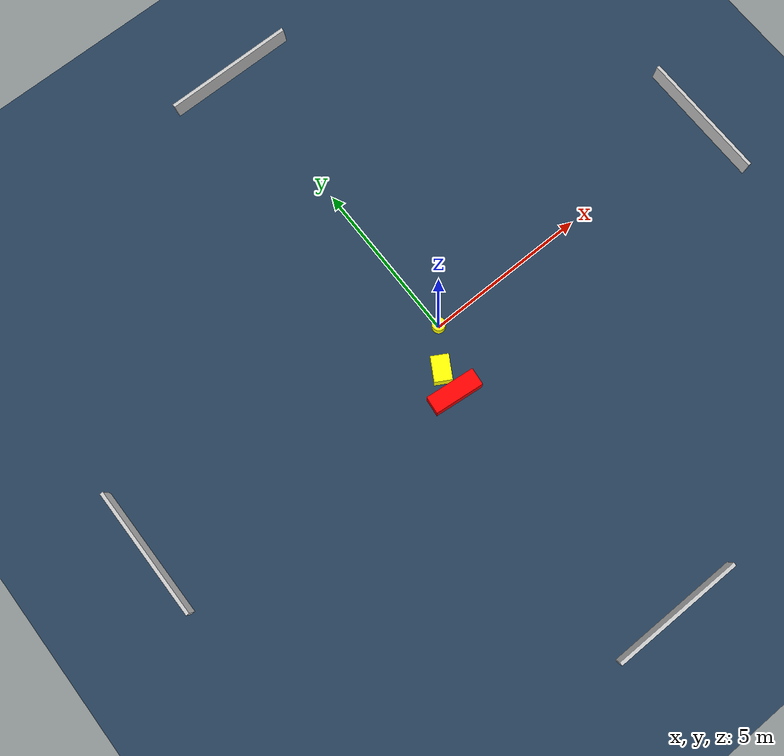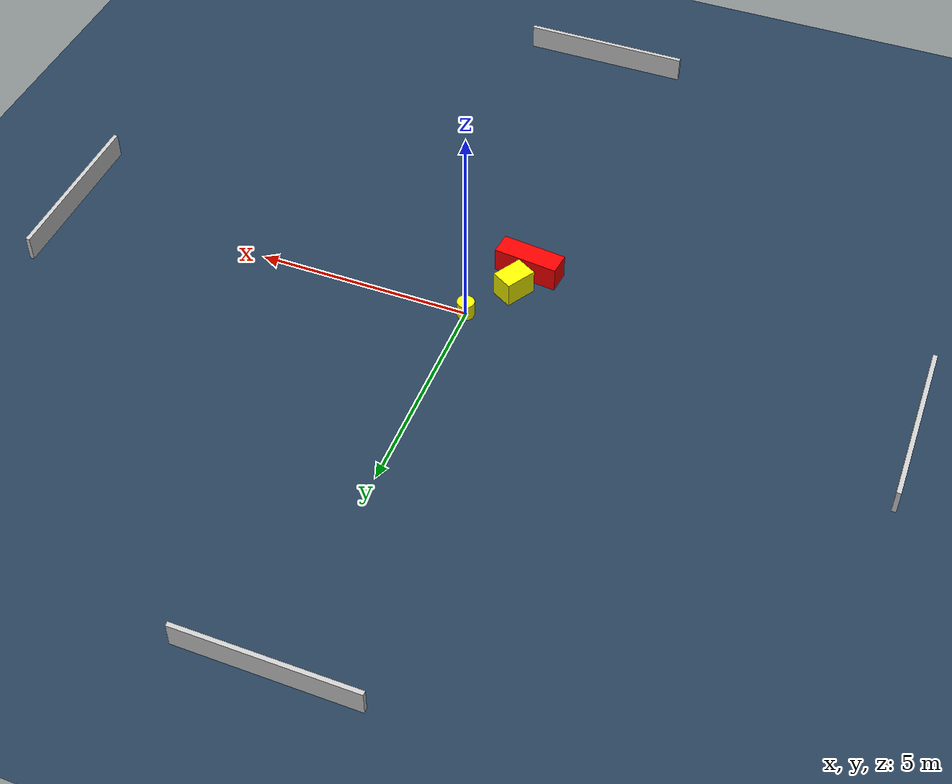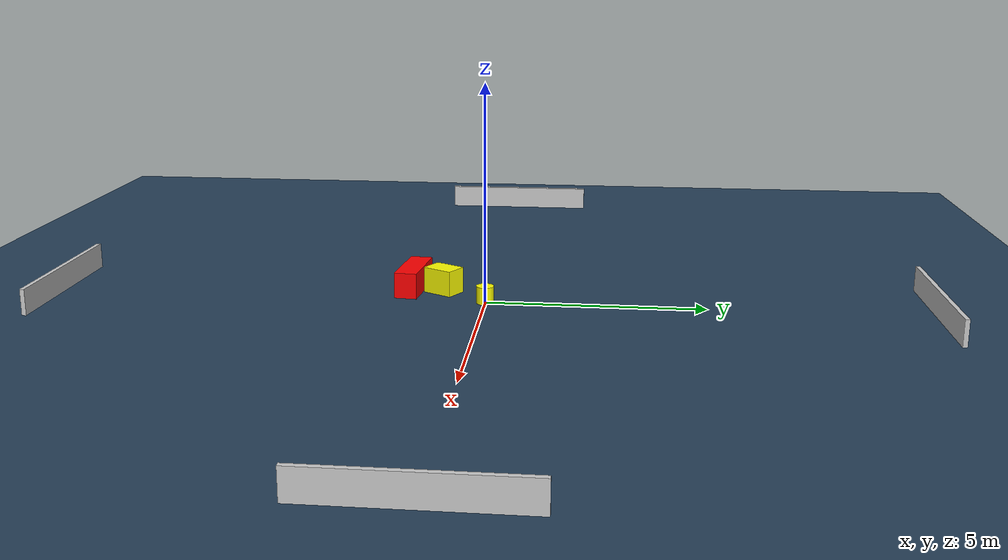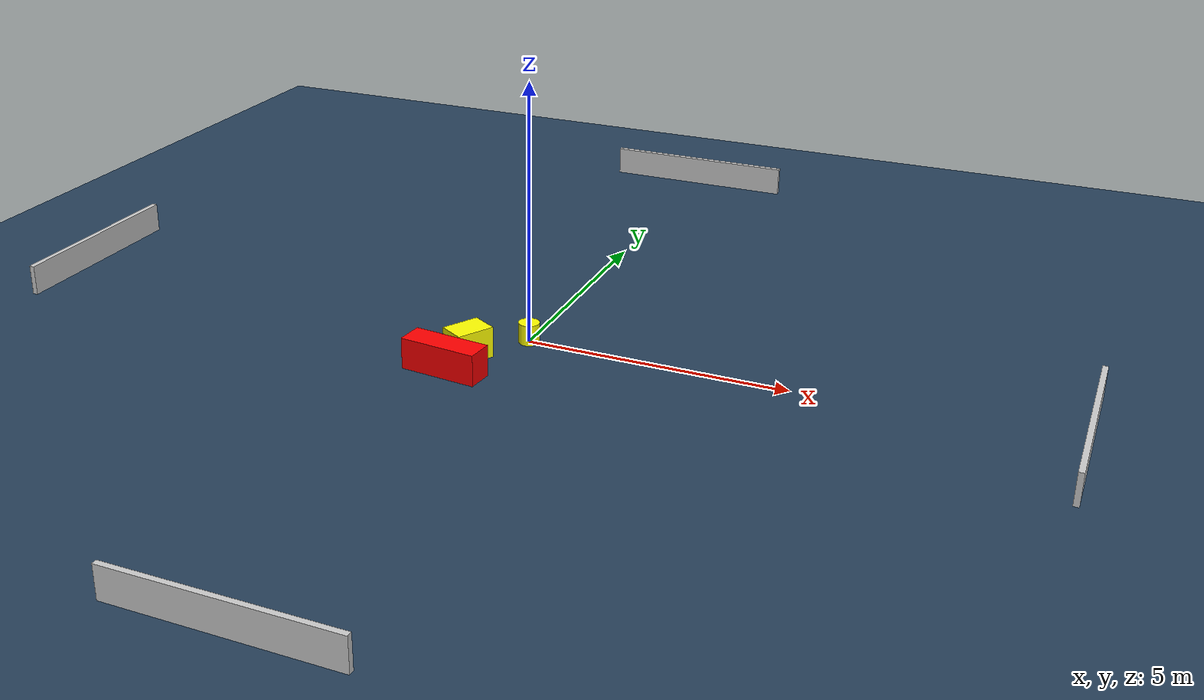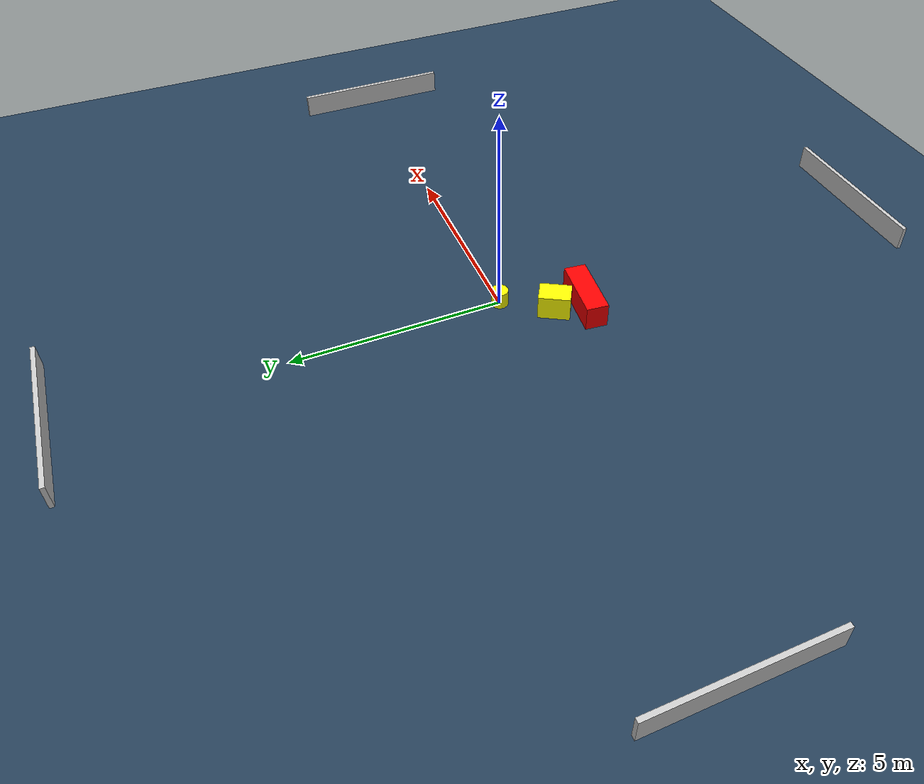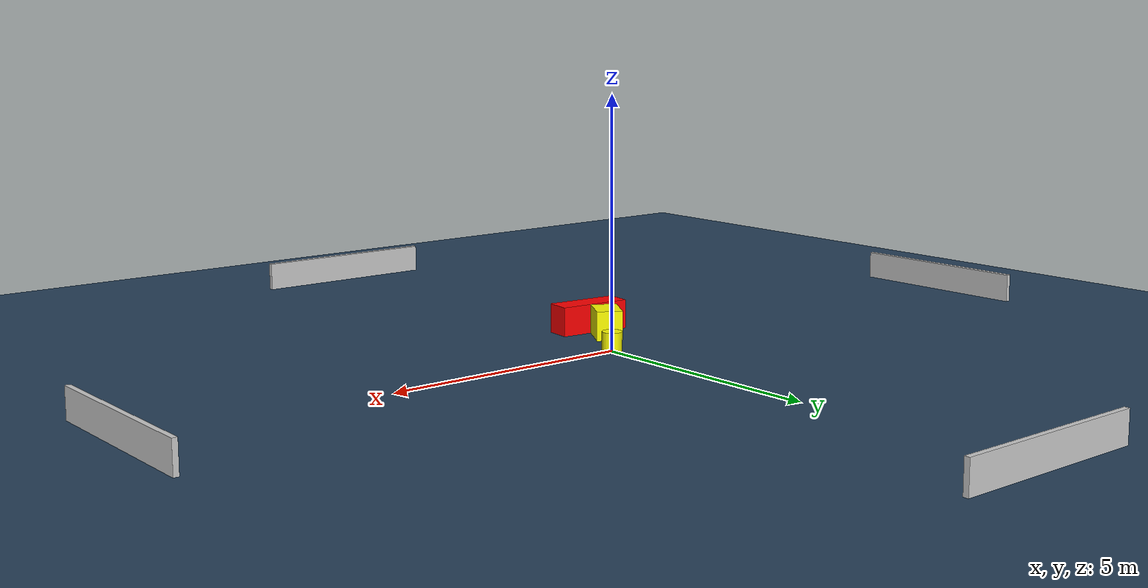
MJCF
<?xml version="1.0" ?>
<mujoco model="generated_environment">
  <option timestep="0.01" integrator="RK4" cone="elliptic"/>
  <default>
    <geom density="1"/>
  </default>
  <asset>
    <texture builtin="gradient" height="3072" name="skybox" rgb1="0.3 0.5 0.7" rgb2="0 0 0" type="skybox" width="512"/>
    <texture builtin="checker" height="300" name="groundplane" rgb1="0.2 0.3 0.4" rgb2="0.1 0.2 0.3" type="2d" width="300"/>
    <material name="groundplane" reflectance="0.2" texrepeat="5 5" texture="groundplane"/>
  </asset>
  <worldbody>
    <light dir="0 0 -1" directional="true" pos="0 0 1.5"/>
    <geom condim="3" friction="0.5 0.005 0.001" material="groundplane" name="floor" pos="0 0 0" size="0 0 0.05" type="plane"/>
    <body name="walls">
      <geom name="wall_1" condim="4" pos="-10.0 0.0 0.3" rgba="0.800000011920929 0.800000011920929 0.800000011920929 1.0" size="0.05 2.0 0.3" type="box"/>
      <geom name="wall_2" condim="4" pos="10.0 0.0 0.3" rgba="0.800000011920929 0.800000011920929 0.800000011920929 1.0" size="0.05 2.0 0.3" type="box"/>
      <geom name="wall_3" condim="4" pos="0.0 -10.0 0.3" rgba="0.800000011920929 0.800000011920929 0.800000011920929 1.0" size="2.0 0.05 0.3" type="box"/>
      <geom name="wall_4" condim="4" pos="0.0 10.0 0.3" rgba="0.800000011920929 0.800000011920929 0.800000011920929 1.0" size="2.0 0.05 0.3" type="box"/>
    </body>
    <body name="robot">
      <joint name="joint_x" type="slide" pos="0 0 0" axis="1 0 0"/>
      <joint name="joint_y" type="slide" pos="0 0 0" axis="0 1 0"/>
      <geom name="robot" type="cylinder" pos="0.0 0.0 0.2" size="0.2 0.2 0.0" mass="5.0" friction="1.0 0.005 0.0001" condim="4" rgba="1.0 1.0 0.0 1.0"/>
    </body>
    <body name="obstacle_1_movable">
      <geom name="obstacle_1_movable" condim="4" pos="-0.7502014031045238 -1.055594976305222 0.3" euler="0 0 330.1444416373497" friction="0.0 0.005 0.001" rgba="1.0 1.0 0.0 1.0" size="0.2632426781781836 0.37208246106347964 0.3" type="box" mass="0.1"/>
      <joint type="free"/>
    </body>
    <body name="obstacle_2_static">
      <geom name="obstacle_2_static" condim="4" pos="-0.8651454133479057 -1.7815924747868908 0.3" euler="0 0 174.01710816751265" friction="0.0 0.005 0.001" rgba="1.0 0.0 0.0 1.0" size="0.7512902568080757 0.2618157071942806 0.3" type="box"/>
    </body>
  </worldbody>
  <actuator>
    <motor name="actuator_x" joint="joint_x" gear="1" ctrlrange="-1 1"/>
    <motor name="actuator_y" joint="joint_y" gear="1" ctrlrange="-1 1"/>
  </actuator>
</mujoco>
